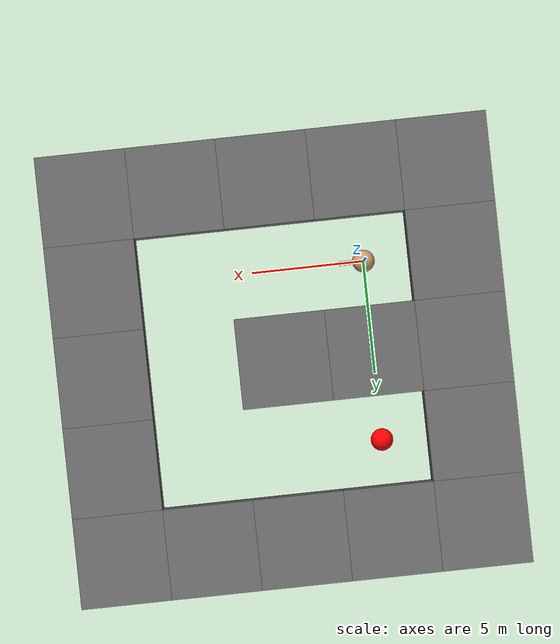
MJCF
<mujoco>
    <compiler angle="degree" coordinate="local" inertiafromgeom="true" />
    <option integrator="RK4" timestep="0.02" />
    <default>
        <joint armature="0" damping="0" limited="false" />
        <geom conaffinity="0" condim="3" density="100" friction="1 0.5 0.5" margin="0" rgba="0.8 0.6 0.4 1" />
    </default>
    <asset>
        <texture builtin="gradient" height="100" rgb1="1 1 1" rgb2="0 0 0" type="skybox" width="100" />
        <texture builtin="flat" height="1278" mark="cross" markrgb="1 1 1" name="texgeom" random="0.01" rgb1="0.8 0.6 0.4" rgb2="0.8 0.6 0.4" type="cube" width="127" />
        <texture builtin="checker" height="100" name="texplane" rgb1="0 0 0" rgb2="0.8 0.8 0.8" type="2d" width="100" />
        <material name="MatPlane" reflectance="0.5" shininess="1" specular="1" texrepeat="30 30" texture="texplane" />
        <material name="geom" texture="texgeom" texuniform="true" />
    </asset>
    <worldbody>
        <light cutoff="100" diffuse="1 1 1" dir="-0 0 -1.3" directional="true" exponent="1" pos="0 0 1.3" specular=".1 .1 .1" />
        <geom conaffinity="1" condim="3" name="floor" pos="0 0 0" rgba="0.8 0.9 0.8 1" size="40 40 40" type="plane" />
        <body name="masspoint" pos="0 0 0">
            <geom name="pointbody" pos="0 0 0.5" size="0.5" type="sphere" />
            <geom name="pointarrow" pos="0.6 0 0.5" size="0.5 0.1 0.1" type="box" />
            <joint axis="1 0 0" name="masspoint:slidex" pos="0 0 0" type="slide" />
            <joint axis="0 1 0" name="masspoint:slidey" pos="0 0 0" type="slide" />
            <joint axis="0 0 1" limited="false" name="rot" pos="0 0 0" type="hinge" />
            <site name="masspoint" pos="0 0 0" size="0.02 0.02 0.02" rgba="0.1 1.0 0.1 1" type="sphere" />
        </body>

        <!--geom name="target" pos="0 8 0" rgba="1. 0. 0. 0.6" size="0.5" type="sphere" /!-->
        <site name="target0" pos="0 8 0" size="0.5" rgba="1 0 0 1" type="sphere"/>

        <geom conaffinity="1" contype="1" material="" name="block_0_0" pos="-4.000000 -4.000000 1.000000" rgba="0.4 0.4 0.4 1" size="2.000000 2.000000 1.000000" type="box" />
        <geom conaffinity="1" contype="1" material="" name="block_0_1" pos="0.000000 -4.000000 1.000000" rgba="0.4 0.4 0.4 1" size="2.000000 2.000000 1.000000" type="box" />
        <geom conaffinity="1" contype="1" material="" name="block_0_2" pos="4.000000 -4.000000 1.000000" rgba="0.4 0.4 0.4 1" size="2.000000 2.000000 1.000000" type="box" />
        <geom conaffinity="1" contype="1" material="" name="block_0_3" pos="8.000000 -4.000000 1.000000" rgba="0.4 0.4 0.4 1" size="2.000000 2.000000 1.000000" type="box" />
        <geom conaffinity="1" contype="1" material="" name="block_0_4" pos="12.000000 -4.000000 1.000000" rgba="0.4 0.4 0.4 1" size="2.000000 2.000000 1.000000" type="box" />
        <geom conaffinity="1" contype="1" material="" name="block_1_0" pos="-4.000000 0.000000 1.000000" rgba="0.4 0.4 0.4 1" size="2.000000 2.000000 1.000000" type="box" />
        <geom conaffinity="1" contype="1" material="" name="block_1_4" pos="12.000000 0.000000 1.000000" rgba="0.4 0.4 0.4 1" size="2.000000 2.000000 1.000000" type="box" />
        <geom conaffinity="1" contype="1" material="" name="block_2_0" pos="-4.000000 4.000000 1.000000" rgba="0.4 0.4 0.4 1" size="2.000000 2.000000 1.000000" type="box" />
        <geom conaffinity="1" contype="1" material="" name="block_2_1" pos="0.000000 4.000000 1.000000" rgba="0.4 0.4 0.4 1" size="2.000000 2.000000 1.000000" type="box" />
        <geom conaffinity="1" contype="1" material="" name="block_2_2" pos="4.000000 4.000000 1.000000" rgba="0.4 0.4 0.4 1" size="2.000000 2.000000 1.000000" type="box" />
        <geom conaffinity="1" contype="1" material="" name="block_2_4" pos="12.000000 4.000000 1.000000" rgba="0.4 0.4 0.4 1" size="2.000000 2.000000 1.000000" type="box" />
        <geom conaffinity="1" contype="1" material="" name="block_3_0" pos="-4.000000 8.000000 1.000000" rgba="0.4 0.4 0.4 1" size="2.000000 2.000000 1.000000" type="box" />
        <geom conaffinity="1" contype="1" material="" name="block_3_4" pos="12.000000 8.000000 1.000000" rgba="0.4 0.4 0.4 1" size="2.000000 2.000000 1.000000" type="box" />
        <geom conaffinity="1" contype="1" material="" name="block_4_0" pos="-4.000000 12.000000 1.000000" rgba="0.4 0.4 0.4 1" size="2.000000 2.000000 1.000000" type="box" />
        <geom conaffinity="1" contype="1" material="" name="block_4_1" pos="0.000000 12.000000 1.000000" rgba="0.4 0.4 0.4 1" size="2.000000 2.000000 1.000000" type="box" />
        <geom conaffinity="1" contype="1" material="" name="block_4_2" pos="4.000000 12.000000 1.000000" rgba="0.4 0.4 0.4 1" size="2.000000 2.000000 1.000000" type="box" />
        <geom conaffinity="1" contype="1" material="" name="block_4_3" pos="8.000000 12.000000 1.000000" rgba="0.4 0.4 0.4 1" size="2.000000 2.000000 1.000000" type="box" />
        <geom conaffinity="1" contype="1" material="" name="block_4_4" pos="12.000000 12.000000 1.000000" rgba="0.4 0.4 0.4 1" size="2.000000 2.000000 1.000000" type="box" />
    </worldbody>
    <actuator>

        <motor ctrllimited="true" ctrlrange="-1 1" joint="masspoint:slidex" />
        <motor ctrllimited="true" ctrlrange="-0.25 0.25" joint="rot" />
    </actuator>
</mujoco>
